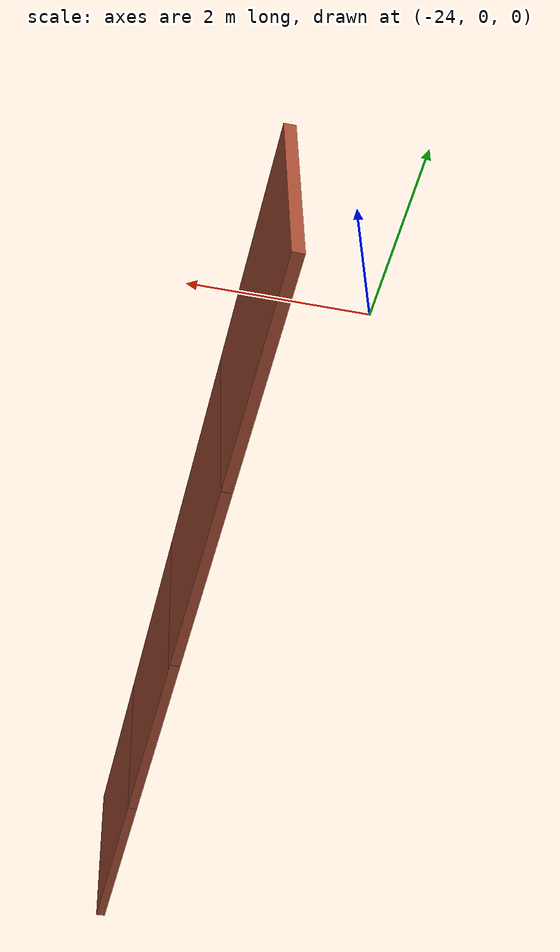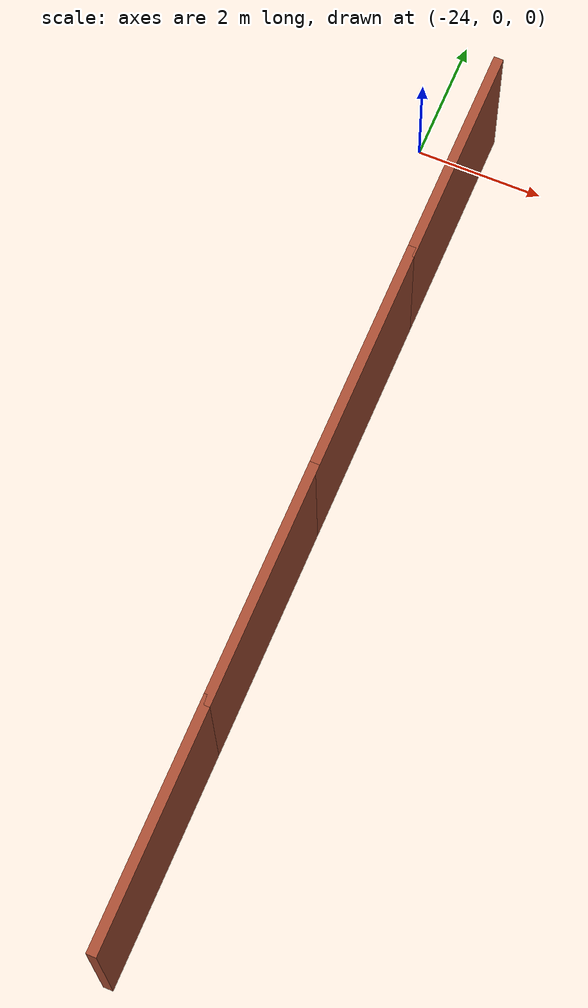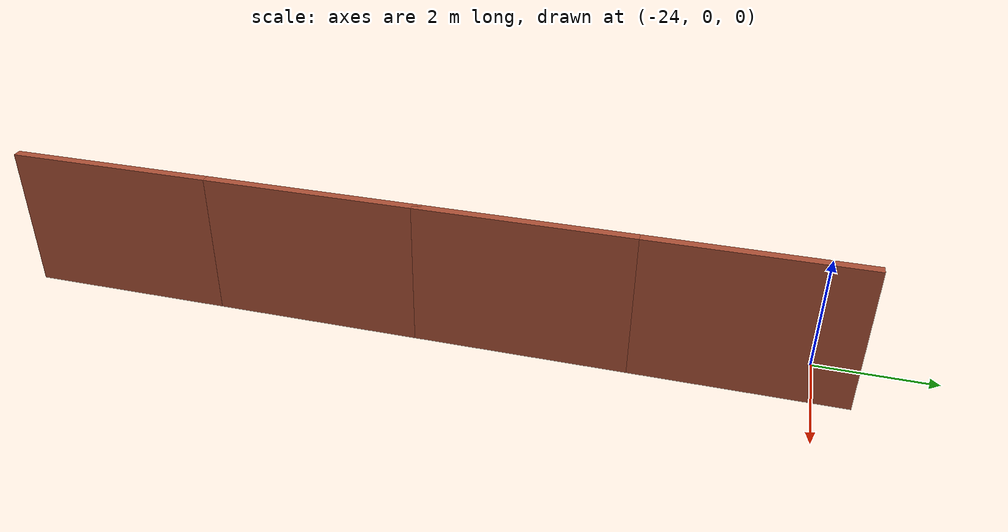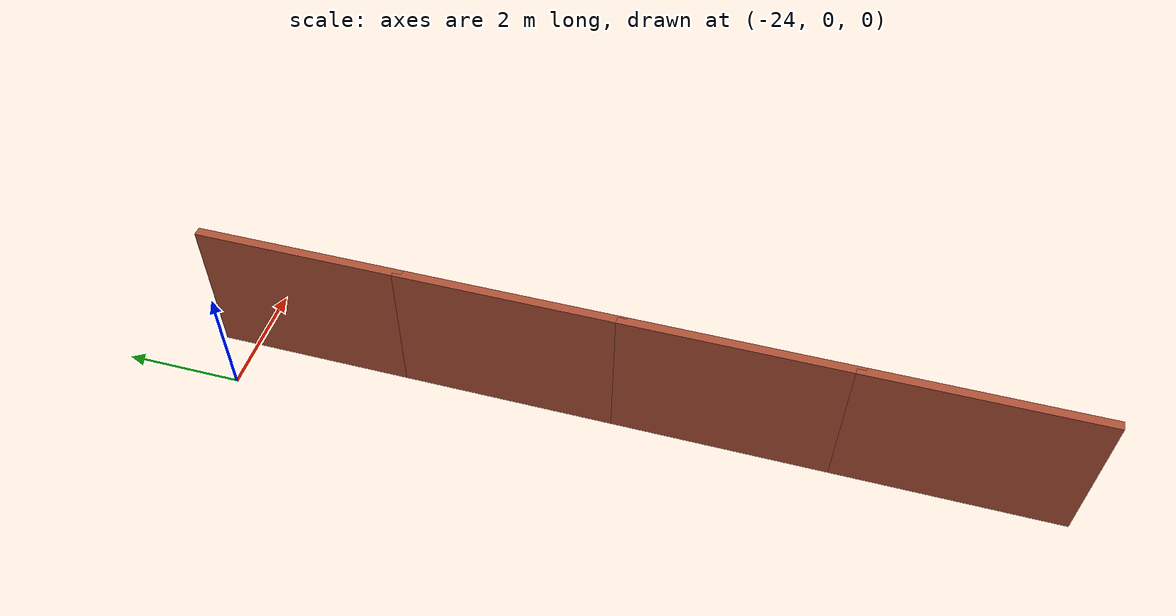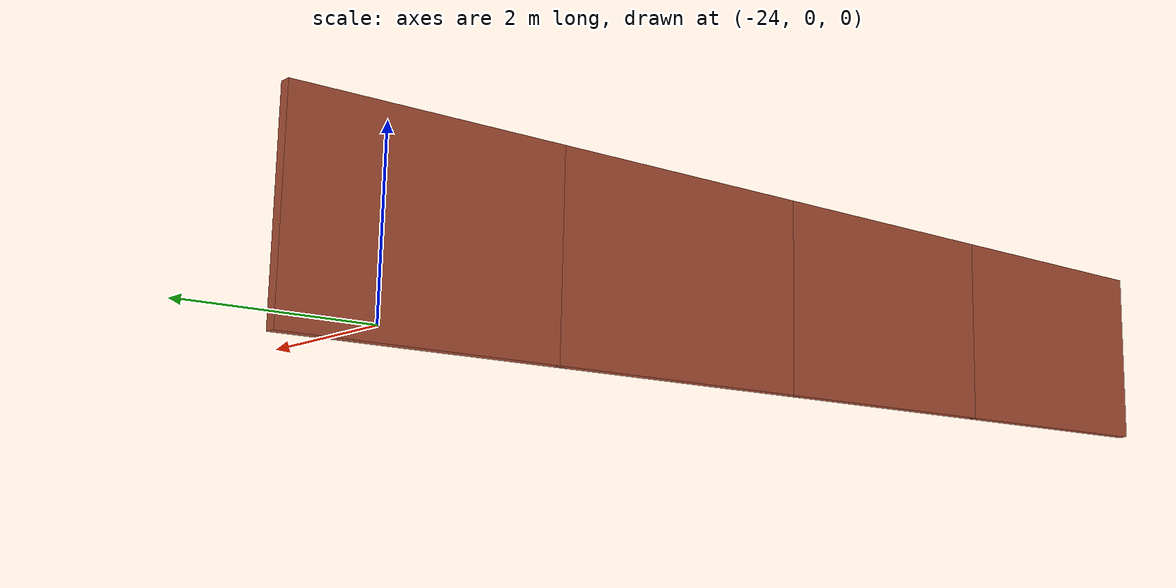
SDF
<?xml version='1.0'?>
<sdf version='1.7'>
  <model name='brick_wall'>
    <pose>-11.5673 -6.54237 0 0 -0 0</pose>
    <link name='Wall_11'>
      <collision name='Wall_11_Collision'>
        <geometry>
          <box>
            <size>3.75 0.15 2.5</size>
          </box>
        </geometry>
        <pose>0 0 1.25 0 -0 0</pose>
      </collision>
      <visual name='Wall_11_Visual'>
        <pose>0 0 1.25 0 -0 0</pose>
        <geometry>
          <box>
            <size>3.75 0.15 2.5</size>
          </box>
        </geometry>
        <material>
          <script>
            <uri>file://media/materials/scripts/gazebo.material</uri>
            <name>Gazebo/Bricks</name>
          </script>
          <ambient>1 1 1 1</ambient>
        </material>
        <meta>
          <layer>0</layer>
        </meta>
      </visual>
      <pose>-11.4923 -5.275 0 0 -0 1.5708</pose>
    </link>
    <link name='Wall_12'>
      <collision name='Wall_12_Collision'>
        <geometry>
          <box>
            <size>3.75 0.15 2.5</size>
          </box>
        </geometry>
        <pose>0 0 1.25 0 -0 0</pose>
      </collision>
      <visual name='Wall_12_Visual'>
        <pose>0 0 1.25 0 -0 0</pose>
        <geometry>
          <box>
            <size>3.75 0.15 2.5</size>
          </box>
        </geometry>
        <material>
          <script>
            <uri>file://media/materials/scripts/gazebo.material</uri>
            <name>Gazebo/Bricks</name>
          </script>
          <ambient>1 1 1 1</ambient>
        </material>
        <meta>
          <layer>0</layer>
        </meta>
      </visual>
      <pose>-11.4923 -1.675 0 0 -0 1.5708</pose>
    </link>
    <link name='Wall_13'>
      <collision name='Wall_13_Collision'>
        <geometry>
          <box>
            <size>3.75 0.15 2.5</size>
          </box>
        </geometry>
        <pose>0 0 1.25 0 -0 0</pose>
      </collision>
      <visual name='Wall_13_Visual'>
        <pose>0 0 1.25 0 -0 0</pose>
        <geometry>
          <box>
            <size>3.75 0.15 2.5</size>
          </box>
        </geometry>
        <material>
          <script>
            <uri>file://media/materials/scripts/gazebo.material</uri>
            <name>Gazebo/Bricks</name>
          </script>
          <ambient>1 1 1 1</ambient>
        </material>
        <meta>
          <layer>0</layer>
        </meta>
      </visual>
      <pose>-11.4923 1.925 0 0 -0 1.5708</pose>
    </link>
    <link name='Wall_14'>
      <collision name='Wall_14_Collision'>
        <geometry>
          <box>
            <size>3.5 0.15 2.5</size>
          </box>
        </geometry>
        <pose>0 0 1.25 0 -0 0</pose>
      </collision>
      <visual name='Wall_14_Visual'>
        <pose>0 0 1.25 0 -0 0</pose>
        <geometry>
          <box>
            <size>3.5 0.15 2.5</size>
          </box>
        </geometry>
        <material>
          <script>
            <uri>file://media/materials/scripts/gazebo.material</uri>
            <name>Gazebo/Bricks</name>
          </script>
          <ambient>1 1 1 1</ambient>
        </material>
        <meta>
          <layer>0</layer>
        </meta>
      </visual>
      <pose>-11.4923 5.4 0 0 -0 1.5708</pose>
    </link>
    <static>1</static>
  </model>
</sdf>
